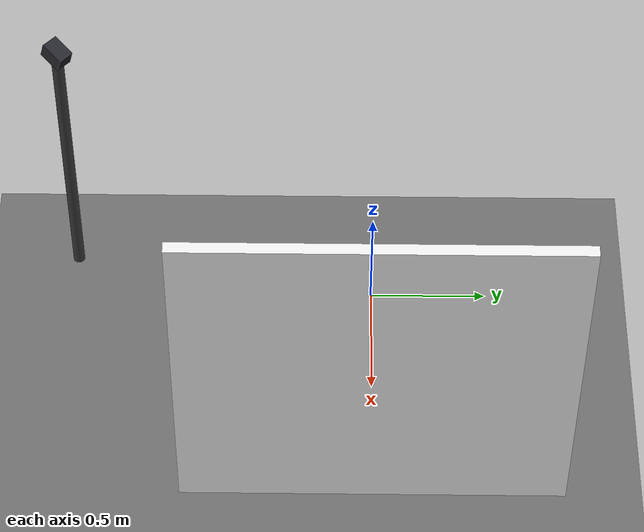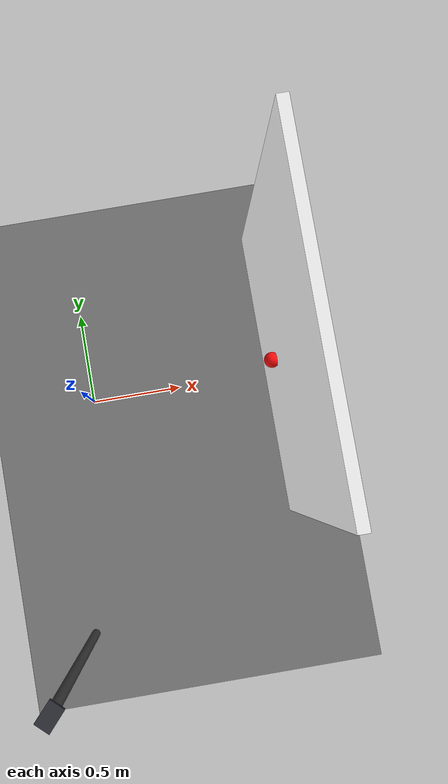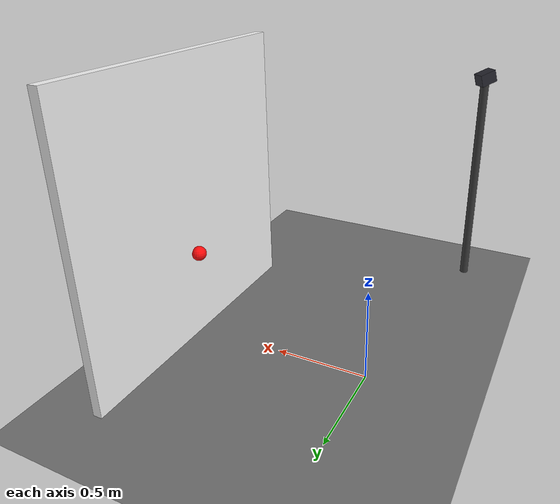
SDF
<?xml version='1.0' encoding='utf-8'?>
<sdf version="1.8">
  <world name="line_follower">
    <physics type="ode">
      <max_step_size>0.004</max_step_size>
      <real_time_factor>0</real_time_factor>
      <ode>
        <solver>
          <type>quick</type>
          <iters>50</iters>
          <sor>1.3</sor>
          <erp>0.2</erp>
          <cfm>1e-5</cfm>
        </solver>
      </ode>
    </physics>
    <plugin filename="gz-sim-physics-system" name="gz::sim::systems::Physics" />
    <plugin filename="gz-sim-user-commands-system" name="gz::sim::systems::UserCommands" />
    <plugin filename="gz-sim-scene-broadcaster-system" name="gz::sim::systems::SceneBroadcaster" />
    <plugin filename="gz-sim-sensors-system" name="gz::sim::systems::Sensors">
      <render_engine>ogre2</render_engine>
    </plugin>
    <light type="directional" name="sun">
      <cast_shadows>true</cast_shadows>
      <pose>0 0 10 0 0 0</pose>
      <diffuse>0.88 0.88 0.88 1</diffuse>
      <specular>0.2 0.2 0.2 1</specular>
      <attenuation>
        <range>1000</range>
        <constant>0.9</constant>
        <linear>0.01</linear>
        <quadratic>0.001</quadratic>
      </attenuation>
      <direction>-0.5 0.1 -0.9</direction>
    </light>
    <model name="ground_plane">
      <static>true</static>
      <link name="link">
        <collision name="col">
          <geometry>
            <plane>
              <normal>0 0 1</normal>
              <size>10 10</size>
            </plane>
          </geometry>
          <surface>
            <friction>
              <ode>
                <mu>100</mu>
                <mu2>50</mu2>
              </ode>
            </friction>
          </surface>
        </collision>
        <visual name="vis">
          <geometry>
            <plane>
              <normal>0 0 1</normal>
              <size>10 10</size>
            </plane>
          </geometry>
          <material>
            <ambient>0.45 0.45 0.45 1</ambient>
            <diffuse>0.45 0.45 0.45 1</diffuse>
          </material>
        </visual>
      </link>
    </model>
    <model name="static_line_camera">
      <static>true</static>
      <link name="support_link">
        <pose>-0.20 -1.30 0.65 0 0 0</pose>
        <visual name="support_pole">
          <geometry>
            <cylinder>
              <radius>0.025</radius>
              <length>1.30</length>
            </cylinder>
          </geometry>
          <material>
            <ambient>0.18 0.18 0.18 1</ambient>
            <diffuse>0.22 0.22 0.22 1</diffuse>
          </material>
        </visual>
      </link>
      <link name="camera_link">
        <pose>-0.20 -1.30 1.30 0 0.30 0.83</pose>
        <visual name="camera_body">
          <geometry>
            <box>
              <size>0.10 0.07 0.07</size>
            </box>
          </geometry>
          <material>
            <ambient>0.10 0.10 0.12 1</ambient>
            <diffuse>0.15 0.15 0.18 1</diffuse>
          </material>
        </visual>
        <sensor type="camera" name="line_camera">
          <always_on>true</always_on>
          <update_rate>30</update_rate>
          <visualize>false</visualize>
          <topic>/line_camera</topic>
          <camera name="static_wall_camera">
            <horizontal_fov>1.3090</horizontal_fov>
            <image>
              <width>640</width>
              <height>480</height>
              <format>R8G8B8</format>
            </image>
            <clip>
              <near>0.05</near>
              <far>5.0</far>
            </clip>
            <noise>
              <type>gaussian</type>
              <mean>0.0</mean>
              <stddev>0.002</stddev>
            </noise>
          </camera>
        </sensor>
      </link>
      <joint name="camera_mount_joint" type="fixed">
        <parent>support_link</parent>
        <child>camera_link</child>
      </joint>
    </model>
    <model name="wall">
      <static>true</static>
      <pose>1.027 0 0.75 0 0 0</pose>
      <link name="link">
        <collision name="col">
          <geometry>
            <box>
              <size>0.05 1.6 1.6</size>
            </box>
          </geometry>
        </collision>
        <visual name="vis">
          <geometry>
            <box>
              <size>0.05 1.6 1.6</size>
            </box>
          </geometry>
          <material>
            <ambient>0.97 0.97 0.97 1</ambient>
            <diffuse>0.97 0.97 0.97 1</diffuse>
            <specular>0.03 0.03 0.03 1</specular>
          </material>
        </visual>
      </link>
    </model>
    <model name="laser_dot">
      <static>true</static>
      <pose>0.980 0 0.488 0 0 0</pose>
      <link name="link">
        <visual name="vis">
          <geometry>
            <sphere>
              <radius>0.04</radius>
            </sphere>
          </geometry>
          <material>
            <ambient>1.0 0.05 0.05 1</ambient>
            <diffuse>1.0 0.05 0.05 1</diffuse>
            <emissive>1.0 0.0 0.0 1</emissive>
          </material>
        </visual>
      </link>
    </model>
  </world>
</sdf>
